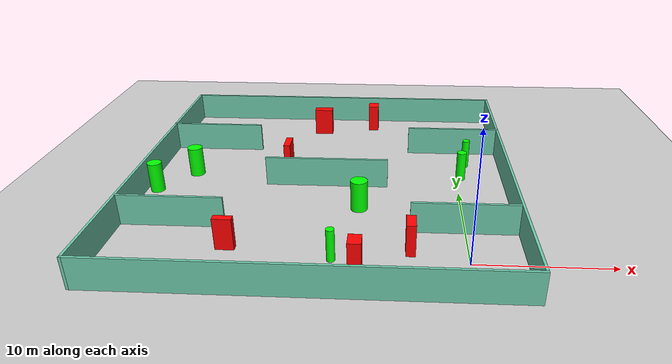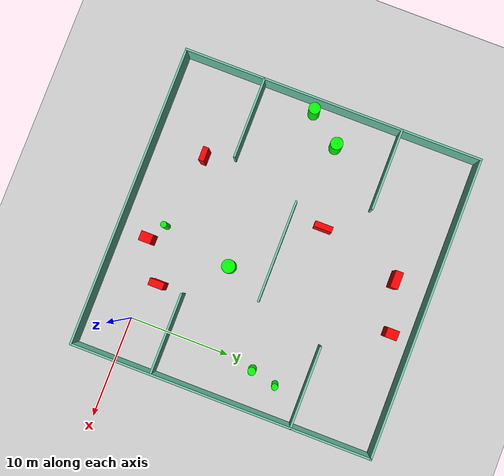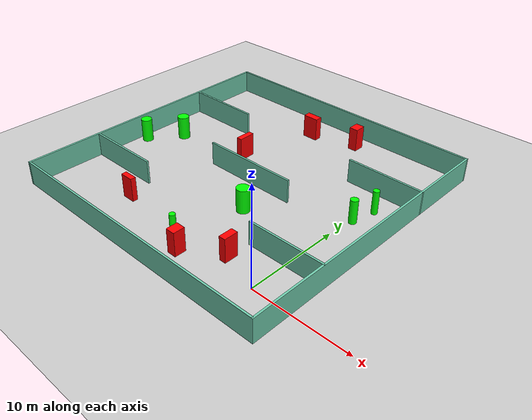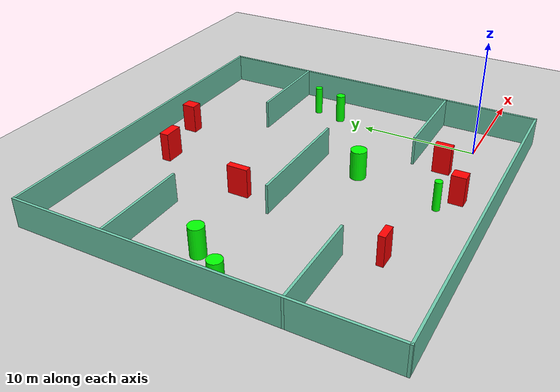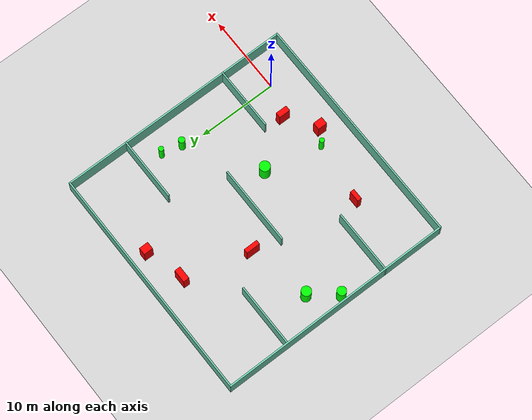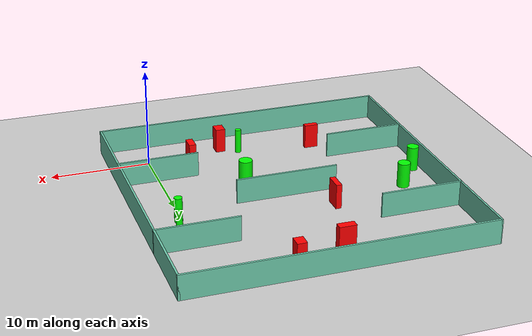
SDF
<sdf version="1.7">
 <world name="default">
  <light name="sun" type="directional">
   <pose>0 0 10 0 -0 0</pose>
   <diffuse>0.8 0.8 0.8 1</diffuse>
   <specular>0.2 0.2 0.2 1</specular>
   <attenuation>
    <range>1000</range>
    <constant>0.9</constant>
    <linear>0.01</linear>
    <quadratic>0.001</quadratic>
   </attenuation>
   <direction>-0.5 0.1 -0.9</direction>
   <spot><inner_angle>0</inner_angle><outer_angle>0</outer_angle><falloff>0</falloff></spot>
  </light>
  <model name="ground_plane">
   <static>1</static>
   <link name="link">
    <collision name="collision">
     <geometry><plane><normal>0 0 1</normal><size>100 100</size></plane></geometry>
     <surface>
      <contact><collide_bitmask>65535</collide_bitmask></contact>
      <friction><ode><mu>100</mu><mu2>50</mu2></ode></friction>
     </surface>
    </collision>
    <visual name="visual">
     <cast_shadows>0</cast_shadows>
     <geometry><plane><normal>0 0 1</normal><size>100 100</size></plane></geometry>
     <material>
      <script><uri>file://media/materials/scripts/gazebo.material</uri><name>Gazebo/Grey</name></script>
     </material>
    </visual>
   </link>
  </model>
  <gravity>0 0 -9.8</gravity>
  <magnetic_field>6e-06 2.3e-05 -4.2e-05</magnetic_field>
  <atmosphere type="adiabatic"/>
  <physics type="ode">
   <max_step_size>0.001</max_step_size>
   <real_time_factor>1</real_time_factor>
   <real_time_update_rate>1000</real_time_update_rate>
  </physics>
  <scene><ambient>0.4 0.4 0.4 1</ambient><background>0.7 0.7 0.7 1</background><shadows>1</shadows></scene>
  <spherical_coordinates>
   <surface_model>EARTH_WGS84</surface_model>
   <latitude_deg>0</latitude_deg>
   <longitude_deg>0</longitude_deg>
   <elevation>0</elevation>
   <heading_deg>0</heading_deg>
  </spherical_coordinates>
  <model name="my_base_walls">
   <link name="Wall_10">
    <collision name="Wall_10_Collision">
     <geometry><box><size>8.2 0.2 2.5</size></box></geometry>
     <pose>0 0 1.25 0 -0 0</pose>
    </collision>
    <visual name="Wall_10_Visual">
     <pose>0 0 1.25 0 -0 0</pose>
     <geometry><box><size>8.2 0.2 2.5</size></box></geometry>
     <material>
      <script><uri>file://media/materials/scripts/gazebo.material</uri><name>Gazebo/Grey</name></script>
      <ambient>0.435294 0.796078 0.67451 1</ambient>
     </material>
     <meta><layer>0</layer></meta>
    </visual>
    <pose>-11 -7 0 0 -0 0</pose>
   </link>
   <link name="Wall_12">
    <collision name="Wall_12_Collision">
     <geometry><box><size>8.2 0.2 2.5</size></box></geometry>
     <pose>0 0 1.25 0 -0 0</pose>
    </collision>
    <visual name="Wall_12_Visual">
     <pose>0 0 1.25 0 -0 0</pose>
     <geometry><box><size>8.2 0.2 2.5</size></box></geometry>
     <material>
      <script><uri>file://media/materials/scripts/gazebo.material</uri><name>Gazebo/Grey</name></script>
      <ambient>0.435294 0.796078 0.67451 1</ambient>
     </material>
     <meta><layer>0</layer></meta>
    </visual>
    <pose>-11 7 0 0 -0 0</pose>
   </link>
   <link name="Wall_14">
    <collision name="Wall_14_Collision">
     <geometry><box><size>8.2 0.2 2.5</size></box></geometry>
     <pose>0 0 1.25 0 -0 0</pose>
    </collision>
    <visual name="Wall_14_Visual">
     <pose>0 0 1.25 0 -0 0</pose>
     <geometry><box><size>8.2 0.2 2.5</size></box></geometry>
     <material>
      <script><uri>file://media/materials/scripts/gazebo.material</uri><name>Gazebo/Grey</name></script>
      <ambient>0.435294 0.796078 0.67451 1</ambient>
     </material>
     <meta><layer>0</layer></meta>
    </visual>
    <pose>11 7 0 0 -0 3.14159</pose>
   </link>
   <link name="Wall_16">
    <collision name="Wall_16_Collision">
     <geometry><box><size>10.2 0.2 2.5</size></box></geometry>
     <pose>0 0 1.25 0 -0 0</pose>
    </collision>
    <visual name="Wall_16_Visual">
     <pose>0 0 1.25 0 -0 0</pose>
     <geometry><box><size>10.2 0.2 2.5</size></box></geometry>
     <material>
      <script><uri>file://media/materials/scripts/gazebo.material</uri><name>Gazebo/Grey</name></script>
      <ambient>0.435294 0.796078 0.67451 1</ambient>
     </material>
     <meta><layer>0</layer></meta>
    </visual>
    <pose>0 0 0 0 -0 3.14159</pose>
   </link>
   <link name="Wall_2">
    <collision name="Wall_2_Collision">
     <geometry><box><size>30.2 0.2 2.5</size></box></geometry>
     <pose>0 0 1.25 0 -0 0</pose>
    </collision>
    <visual name="Wall_2_Visual">
     <pose>0 0 1.25 0 -0 0</pose>
     <geometry><box><size>30.2 0.2 2.5</size></box></geometry>
     <material>
      <script><uri>file://media/materials/scripts/gazebo.material</uri><name>Gazebo/Grey</name></script>
      <ambient>0.435294 0.796078 0.67451 1</ambient>
     </material>
     <meta><layer>0</layer></meta>
    </visual>
    <pose>0 -15 0 0 -0 3.14159</pose>
   </link>
   <link name="Wall_3">
    <collision name="Wall_3_Collision">
     <geometry><box><size>30.2 0.2 2.5</size></box></geometry>
     <pose>0 0 1.25 0 -0 0</pose>
    </collision>
    <visual name="Wall_3_Visual">
     <pose>0 0 1.25 0 -0 0</pose>
     <geometry><box><size>30.2 0.2 2.5</size></box></geometry>
     <material>
      <script><uri>file://media/materials/scripts/gazebo.material</uri><name>Gazebo/Grey</name></script>
      <ambient>0.435294 0.796078 0.67451 1</ambient>
     </material>
     <meta><layer>0</layer></meta>
    </visual>
    <pose>-15 0 0 0 -0 1.5708</pose>
   </link>
   <link name="Wall_4">
    <collision name="Wall_4_Collision">
     <geometry><box><size>30.2 0.2 2.5</size></box></geometry>
     <pose>0 0 1.25 0 -0 0</pose>
    </collision>
    <visual name="Wall_4_Visual">
     <pose>0 0 1.25 0 -0 0</pose>
     <geometry><box><size>30.2 0.2 2.5</size></box></geometry>
     <material>
      <script><uri>file://media/materials/scripts/gazebo.material</uri><name>Gazebo/Grey</name></script>
      <ambient>0.435294 0.796078 0.67451 1</ambient>
     </material>
     <meta><layer>0</layer></meta>
    </visual>
    <pose>0 15 0 0 -0 0</pose>
   </link>
   <link name="Wall_6">
    <collision name="Wall_6_Collision">
     <geometry><box><size>30.2 0.2 2.5</size></box></geometry>
     <pose>0 0 1.25 0 -0 0</pose>
    </collision>
    <visual name="Wall_6_Visual">
     <pose>0 0 1.25 0 -0 0</pose>
     <geometry><box><size>30.2 0.2 2.5</size></box></geometry>
     <material>
      <script><uri>file://media/materials/scripts/gazebo.material</uri><name>Gazebo/Grey</name></script>
      <ambient>0.435294 0.796078 0.67451 1</ambient>
     </material>
     <meta><layer>0</layer></meta>
    </visual>
    <pose>15 0 0 0 -0 1.5708</pose>
   </link>
   <link name="Wall_8">
    <collision name="Wall_8_Collision">
     <geometry><box><size>8.2 0.2 2.5</size></box></geometry>
     <pose>0 0 1.25 0 -0 0</pose>
    </collision>
    <visual name="Wall_8_Visual">
     <pose>0 0 1.25 0 -0 0</pose>
     <geometry><box><size>8.2 0.2 2.5</size></box></geometry>
     <material>
      <script><uri>file://media/materials/scripts/gazebo.material</uri><name>Gazebo/Grey</name></script>
      <ambient>0.435294 0.796078 0.67451 1</ambient>
     </material>
     <meta><layer>0</layer></meta>
    </visual>
    <pose>11 -7 0 0 -0 3.14159</pose>
   </link>
   <static>1</static>
   <pose>-11 11 0 0 -0 0</pose>
  </model>
  <model name="cylinder1">
   <static>1</static>
   <link name="link">
    <inertial>
     <mass>1</mass>
     <inertia><ixx>0.5</ixx><ixy>0</ixy><ixz>0</ixz><iyy>0.5</iyy><iyz>0</iyz><izz>1</izz></inertia>
    </inertial>
    <collision name="collision">
     <geometry><cylinder><radius>0.30513046440884006</radius><length>2.5</length></cylinder></geometry>
    </collision>
    <visual name="visual">
     <geometry><cylinder><radius>0.30513046440884006</radius><length>2.5</length></cylinder></geometry>
     <material>
      <ambient>0 1 0 1</ambient>
      <diffuse>0 1 0 1</diffuse>
      <specular>0.1 0.1 0.1 1</specular>
      <emissive>0 0 0 0</emissive>
     </material>
    </visual>
   </link>
   <pose>-9.557254440977603 0.06579048589557113 1.25 0 0 0</pose>
  </model>
  <model name="cylinder2">
   <static>1</static>
   <link name="link">
    <inertial>
     <mass>1</mass>
     <inertia><ixx>0.5</ixx><ixy>0</ixy><ixz>0</ixz><iyy>0.5</iyy><iyz>0</iyz><izz>1</izz></inertia>
    </inertial>
    <collision name="collision">
     <geometry><cylinder><radius>0.6716885975050891</radius><length>2.5</length></cylinder></geometry>
    </collision>
    <visual name="visual">
     <geometry><cylinder><radius>0.6716885975050891</radius><length>2.5</length></cylinder></geometry>
     <material>
      <ambient>0 1 0 1</ambient>
      <diffuse>0 1 0 1</diffuse>
      <specular>0.1 0.1 0.1 1</specular>
      <emissive>0 0 0 0</emissive>
     </material>
    </visual>
   </link>
   <pose>-8.04423280498726 7.195429340114373 1.25 0 0 0</pose>
  </model>
  <model name="cylinder3">
   <static>1</static>
   <link name="link">
    <inertial>
     <mass>1</mass>
     <inertia><ixx>0.5</ixx><ixy>0</ixy><ixz>0</ixz><iyy>0.5</iyy><iyz>0</iyz><izz>1</izz></inertia>
    </inertial>
    <collision name="collision">
     <geometry><cylinder><radius>0.31425708676439107</radius><length>2.5</length></cylinder></geometry>
    </collision>
    <visual name="visual">
     <geometry><cylinder><radius>0.31425708676439107</radius><length>2.5</length></cylinder></geometry>
     <material>
      <ambient>0 1 0 1</ambient>
      <diffuse>0 1 0 1</diffuse>
      <specular>0.1 0.1 0.1 1</specular>
      <emissive>0 0 0 0</emissive>
     </material>
    </visual>
   </link>
   <pose>0.9448904723137304 15.287307070619164 1.25 0 0 0</pose>
  </model>
  <model name="cylinder4">
   <static>1</static>
   <link name="link">
    <inertial>
     <mass>1</mass>
     <inertia><ixx>0.5</ixx><ixy>0</ixy><ixz>0</ixz><iyy>0.5</iyy><iyz>0</iyz><izz>1</izz></inertia>
    </inertial>
    <collision name="collision">
     <geometry><cylinder><radius>0.6182937410516538</radius><length>2.5</length></cylinder></geometry>
    </collision>
    <visual name="visual">
     <geometry><cylinder><radius>0.6182937410516538</radius><length>2.5</length></cylinder></geometry>
     <material>
      <ambient>0 1 0 1</ambient>
      <diffuse>0 1 0 1</diffuse>
      <specular>0.1 0.1 0.1 1</specular>
      <emissive>0 0 0 0</emissive>
     </material>
    </visual>
   </link>
   <pose>-22.591181713566698 12.645422003398785 1.25 0 0 0</pose>
  </model>
  <model name="cylinder5">
   <static>1</static>
   <link name="link">
    <inertial>
     <mass>1</mass>
     <inertia><ixx>0.5</ixx><ixy>0</ixy><ixz>0</ixz><iyy>0.5</iyy><iyz>0</iyz><izz>1</izz></inertia>
    </inertial>
    <collision name="collision">
     <geometry><cylinder><radius>0.5726589244977363</radius><length>2.5</length></cylinder></geometry>
    </collision>
    <visual name="visual">
     <geometry><cylinder><radius>0.5726589244977363</radius><length>2.5</length></cylinder></geometry>
     <material>
      <ambient>0 1 0 1</ambient>
      <diffuse>0 1 0 1</diffuse>
      <specular>0.1 0.1 0.1 1</specular>
      <emissive>0 0 0 0</emissive>
     </material>
    </visual>
   </link>
   <pose>-25.011650355476117 9.487119996016185 1.25 0 0 0</pose>
  </model>
  <model name="cylinder6">
   <static>1</static>
   <link name="link">
    <inertial>
     <mass>1</mass>
     <inertia><ixx>0.5</ixx><ixy>0</ixy><ixz>0</ixz><iyy>0.5</iyy><iyz>0</iyz><izz>1</izz></inertia>
    </inertial>
    <collision name="collision">
     <geometry><cylinder><radius>0.394277588070826</radius><length>2.5</length></cylinder></geometry>
    </collision>
    <visual name="visual">
     <geometry><cylinder><radius>0.394277588070826</radius><length>2.5</length></cylinder></geometry>
     <material>
      <ambient>0 1 0 1</ambient>
      <diffuse>0 1 0 1</diffuse>
      <specular>0.1 0.1 0.1 1</specular>
      <emissive>0 0 0 0</emissive>
     </material>
    </visual>
   </link>
   <pose>0.3537662245741693 12.765670284350813 1.25 0 0 0</pose>
  </model>
  <model name="box1">
   <static>1</static>
   <link name="link">
    <inertial>
     <mass>1</mass>
     <inertia><ixx>0.083</ixx><ixy>0</ixy><ixz>0</ixz><iyy>0.083</iyy><iyz>0</iyz><izz>0.083</izz></inertia>
    </inertial>
    <collision name="collision">
     <geometry><box><size>0.9503194139023112 1.184991765800863 2.5</size></box></geometry>
    </collision>
    <visual name="visual">
     <geometry><box><size>0.9503194139023112 1.184991765800863 2.5</size></box></geometry>
     <material>
      <ambient>1 0 0 1</ambient>
      <diffuse>1 0 0 1</diffuse>
      <specular>0.1 0.1 0.1 1</specular>
      <emissive>0 0 0 0</emissive>
     </material>
    </visual>
    <sensor name="my_contact" type="contact">
     <contact><collision>box_collision</collision><topic>__default_topic__</topic></contact>
    </sensor>
   </link>
   <pose>-7.55720693998026 23.83217820280414 1.25 0 0 0</pose>
  </model>
  <model name="box2">
   <static>1</static>
   <link name="link">
    <inertial>
     <mass>1</mass>
     <inertia><ixx>0.083</ixx><ixy>0</ixy><ixz>0</ixz><iyy>0.083</iyy><iyz>0</iyz><izz>0.083</izz></inertia>
    </inertial>
    <collision name="collision">
     <geometry><box><size>0.6983019291049949 1.4666046648357778 2.5</size></box></geometry>
    </collision>
    <visual name="visual">
     <geometry><box><size>0.6983019291049949 1.4666046648357778 2.5</size></box></geometry>
     <material>
      <ambient>1 0 0 1</ambient>
      <diffuse>1 0 0 1</diffuse>
      <specular>0.1 0.1 0.1 1</specular>
      <emissive>0 0 0 0</emissive>
     </material>
    </visual>
    <sensor name="my_contact" type="contact">
     <contact><collision>box_collision</collision><topic>__default_topic__</topic></contact>
    </sensor>
   </link>
   <pose>-4.0764556266694605 1.456852760102258 1.25 0 0 0</pose>
  </model>
  <model name="box3">
   <static>1</static>
   <link name="link">
    <inertial>
     <mass>1</mass>
     <inertia><ixx>0.083</ixx><ixy>0</ixy><ixz>0</ixz><iyy>0.083</iyy><iyz>0</iyz><izz>0.083</izz></inertia>
    </inertial>
    <collision name="collision">
     <geometry><box><size>1.681889188198438 0.7727792811165067 2.5</size></box></geometry>
    </collision>
    <visual name="visual">
     <geometry><box><size>1.681889188198438 0.7727792811165067 2.5</size></box></geometry>
     <material>
      <ambient>1 0 0 1</ambient>
      <diffuse>1 0 0 1</diffuse>
      <specular>0.1 0.1 0.1 1</specular>
      <emissive>0 0 0 0</emissive>
     </material>
    </visual>
    <sensor name="my_contact" type="contact">
     <contact><collision>box_collision</collision><topic>__default_topic__</topic></contact>
    </sensor>
   </link>
   <pose>-12.475595364000409 22.483537692677437 1.25 0 0 0</pose>
  </model>
  <model name="box4">
   <static>1</static>
   <link name="link">
    <inertial>
     <mass>1</mass>
     <inertia><ixx>0.083</ixx><ixy>0</ixy><ixz>0</ixz><iyy>0.083</iyy><iyz>0</iyz><izz>0.083</izz></inertia>
    </inertial>
    <collision name="collision">
     <geometry><box><size>0.9569953372546347 1.2013061267870815 2.5</size></box></geometry>
    </collision>
    <visual name="visual">
     <geometry><box><size>0.9569953372546347 1.2013061267870815 2.5</size></box></geometry>
     <material>
      <ambient>1 0 0 1</ambient>
      <diffuse>1 0 0 1</diffuse>
      <specular>0.1 0.1 0.1 1</specular>
      <emissive>0 0 0 0</emissive>
     </material>
    </visual>
    <sensor name="my_contact" type="contact">
     <contact><collision>box_collision</collision><topic>__default_topic__</topic></contact>
    </sensor>
   </link>
   <pose>-7.824140086251825 -1.0521913831777834 1.25 0 0 0</pose>
  </model>
  <model name="box5">
   <static>1</static>
   <link name="link">
    <inertial>
     <mass>1</mass>
     <inertia><ixx>0.083</ixx><ixy>0</ixy><ixz>0</ixz><iyy>0.083</iyy><iyz>0</iyz><izz>0.083</izz></inertia>
    </inertial>
    <collision name="collision">
     <geometry><box><size>0.5591236292709121 1.7894157513414328 2.5</size></box></geometry>
    </collision>
    <visual name="visual">
     <geometry><box><size>0.5591236292709121 1.7894157513414328 2.5</size></box></geometry>
     <material>
      <ambient>1 0 0 1</ambient>
      <diffuse>1 0 0 1</diffuse>
      <specular>0.1 0.1 0.1 1</specular>
      <emissive>0 0 0 0</emissive>
     </material>
    </visual>
    <sensor name="my_contact" type="contact">
     <contact><collision>box_collision</collision><topic>__default_topic__</topic></contact>
    </sensor>
   </link>
   <pose>-14.731030063683185 14.272607589244412 1.25 0 0 0</pose>
  </model>
  <model name="box6">
   <static>1</static>
   <link name="link">
    <inertial>
     <mass>1</mass>
     <inertia><ixx>0.083</ixx><ixy>0</ixy><ixz>0</ixz><iyy>0.083</iyy><iyz>0</iyz><izz>0.083</izz></inertia>
    </inertial>
    <collision name="collision">
     <geometry><box><size>1.3885949372270638 0.5474020547900811 2.5</size></box></geometry>
    </collision>
    <visual name="visual">
     <geometry><box><size>1.3885949372270638 0.5474020547900811 2.5</size></box></geometry>
     <material>
      <ambient>1 0 0 1</ambient>
      <diffuse>1 0 0 1</diffuse>
      <specular>0.1 0.1 0.1 1</specular>
      <emissive>0 0 0 0</emissive>
     </material>
    </visual>
    <sensor name="my_contact" type="contact">
     <contact><collision>box_collision</collision><topic>__default_topic__</topic></contact>
    </sensor>
   </link>
   <pose>-17.16741493922533 1.1670255631914532 1.25 0 0 0</pose>
  </model>
 </world>
</sdf>
